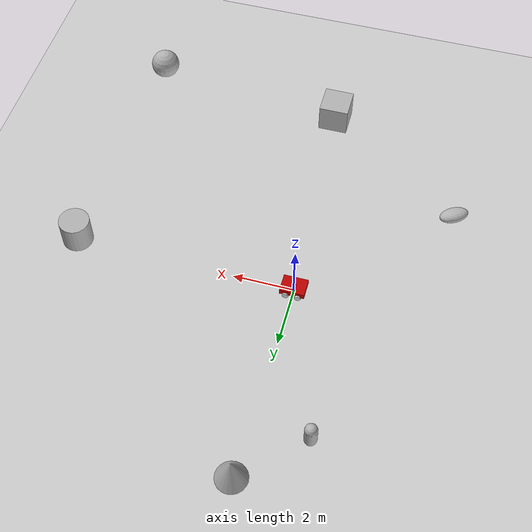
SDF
<sdf version='1.10'>
  <world name='empty'>
    <physics name='1ms' type='ignored'>
      <max_step_size>0.001</max_step_size>
      <real_time_factor>1</real_time_factor>
      <real_time_update_rate>1000</real_time_update_rate>
    </physics>
    <plugin name='gz::sim::systems::Physics' filename='gz-sim-physics-system'/>
    <plugin name='gz::sim::systems::UserCommands' filename='gz-sim-user-commands-system'/>
    <plugin name='gz::sim::systems::SceneBroadcaster' filename='gz-sim-scene-broadcaster-system'/>
    <plugin name='gz::sim::systems::Contact' filename='gz-sim-contact-system'/>
    <plugin name='gz::sim::systems::Sensors' filename='gz-sim-sensors-system'/>
    <gravity>0 0 -9.8000000000000007</gravity>
    <magnetic_field>5.5644999999999998e-06 2.2875799999999999e-05 -4.2388400000000002e-05</magnetic_field>
    <atmosphere type='adiabatic'/>
    <scene>
      <ambient>0.400000006 0.400000006 0.400000006 1</ambient>
      <background>0.699999988 0.699999988 0.699999988 1</background>
      <shadows>true</shadows>
    </scene>
    <model name='ground_plane'>
      <static>true</static>
      <link name='link'>
        <collision name='collision'>
          <geometry>
            <plane>
              <normal>0 0 1</normal>
              <size>100 100</size>
            </plane>
          </geometry>
          <surface>
            <friction>
              <ode/>
            </friction>
            <bounce/>
            <contact/>
          </surface>
        </collision>
        <visual name='visual'>
          <geometry>
            <plane>
              <normal>0 0 1</normal>
              <size>100 100</size>
            </plane>
          </geometry>
          <material>
            <ambient>0.800000012 0.800000012 0.800000012 1</ambient>
            <diffuse>0.800000012 0.800000012 0.800000012 1</diffuse>
            <specular>0.800000012 0.800000012 0.800000012 1</specular>
          </material>
        </visual>
        <pose>0 0 0 0 0 0</pose>
        <inertial>
          <pose>0 0 0 0 0 0</pose>
          <mass>1</mass>
          <inertia>
            <ixx>1</ixx>
            <ixy>0</ixy>
            <ixz>0</ixz>
            <iyy>1</iyy>
            <iyz>0</iyz>
            <izz>1</izz>
          </inertia>
        </inertial>
        <enable_wind>false</enable_wind>
      </link>
      <pose>0 0 0 0 0 0</pose>
      <self_collide>false</self_collide>
    </model>
    <model name='rover'>
      <link name='base_link'>
        <inertial>
          <pose>0 0 0.1042307692307692 0 0 0</pose>
          <mass>5.2000000000000002</mass>
          <inertia>
            <ixx>0.1691669230769231</ixx>
            <ixy>0</ixy>
            <ixz>0</ixz>
            <iyy>0.28583358974358991</iyy>
            <iyz>0</iyz>
            <izz>0.41699999999999998</izz>
          </inertia>
        </inertial>
        <collision name='base_link_collision'>
          <pose>0 0 0.10000000000000001 0 0 0</pose>
          <geometry>
            <box>
              <size>0.80000000000000004 0.59999999999999998 0.20000000000000001</size>
            </box>
          </geometry>
          <surface>
            <friction>
              <ode/>
            </friction>
            <bounce/>
            <contact/>
          </surface>
        </collision>
        <collision name='base_link_fixed_joint_lump__lidar_link_collision_1'>
          <pose>0 0 0.20999999999999999 0 0 0</pose>
          <geometry>
            <box>
              <size>0.10000000000000001 0.10000000000000001 0.02</size>
            </box>
          </geometry>
          <surface>
            <contact>
              <ode/>
            </contact>
            <friction>
              <ode/>
            </friction>
            <bounce/>
          </surface>
        </collision>
        <visual name='base_link_visual'>
          <pose>0 0 0.10000000000000001 0 0 0</pose>
          <geometry>
            <box>
              <size>0.80000000000000004 0.59999999999999998 0.20000000000000001</size>
            </box>
          </geometry>
          <material>
            <diffuse>0.75000006 0 0 1</diffuse>
            <ambient>0.75000006 0 0 1</ambient>
          </material>
        </visual>
        <visual name='base_link_fixed_joint_lump__lidar_link_visual_1'>
          <pose>0 0 0.20999999999999999 0 0 0</pose>
          <geometry>
            <cylinder>
              <length>0.02</length>
              <radius>0.050000000000000003</radius>
            </cylinder>
          </geometry>
          <material>
            <diffuse>0 0.75000006 0 1</diffuse>
            <ambient>0 0.75000006 0 1</ambient>
          </material>
        </visual>
        <sensor name='lidar' type='gpu_lidar'>
          <pose>0 0 0.20999999999999999 0 0 0</pose>
          <topic>scan</topic>
          <update_rate>5</update_rate>
          <enable_metrics>false</enable_metrics>
          <lidar>
            <scan>
              <horizontal>
                <samples>360</samples>
                <resolution>1</resolution>
                <min_angle>-1.5708</min_angle>
                <max_angle>1.5708</max_angle>
              </horizontal>
              <vertical>
                <samples>1</samples>
                <min_angle>0</min_angle>
                <max_angle>0</max_angle>
                <resolution>1</resolution>
              </vertical>
            </scan>
            <range>
              <min>0.12</min>
              <max>10</max>
              <resolution>0</resolution>
            </range>
            <noise>
              <type>none</type>
              <mean>0</mean>
              <stddev>0</stddev>
            </noise>
            <visibility_mask>4294967295</visibility_mask>
          </lidar>
        </sensor>
        <pose>0 0 0 0 0 0</pose>
        <enable_wind>false</enable_wind>
      </link>
      <joint name='base_back_left_wheel_joint' type='revolute'>
        <pose>0 0 0 0 0 0</pose>
        <parent>base_link</parent>
        <child>back_left_wheel_link</child>
        <axis>
          <xyz>0 1 0</xyz>
          <limit>
            <lower>-inf</lower>
            <upper>inf</upper>
            <effort>inf</effort>
            <velocity>inf</velocity>
            <stiffness>100000000</stiffness>
            <dissipation>1</dissipation>
          </limit>
          <dynamics>
            <spring_reference>0</spring_reference>
            <spring_stiffness>0</spring_stiffness>
            <damping>0</damping>
            <friction>0</friction>
          </dynamics>
        </axis>
      </joint>
      <link name='back_left_wheel_link'>
        <pose>-0.19999999999999998 0.32500000000000001 0 -3.0382561963537744e-33 4.5635994574735281e-16 -6.9326921646728353e-49</pose>
        <inertial>
          <pose>0 0 0 1.5707963267948959 0 0</pose>
          <mass>1</mass>
          <inertia>
            <ixx>0.0027083333333333339</ixx>
            <ixy>0</ixy>
            <ixz>0</ixz>
            <iyy>0.0027083333333333339</iyy>
            <iyz>0</iyz>
            <izz>0.005000000000000001</izz>
          </inertia>
        </inertial>
        <collision name='back_left_wheel_link_collision'>
          <pose>0 0 0 0 0 0</pose>
          <geometry>
            <sphere>
              <radius>0.10000000000000001</radius>
            </sphere>
          </geometry>
          <surface>
            <friction>
              <ode/>
            </friction>
            <bounce/>
            <contact/>
          </surface>
        </collision>
        <visual name='back_left_wheel_link_visual'>
          <pose>0 0 0 1.5707963267948959 0 0</pose>
          <geometry>
            <cylinder>
              <length>0.050000000000000003</length>
              <radius>0.10000000000000001</radius>
            </cylinder>
          </geometry>
          <material>
            <diffuse>0.875 0.875 0.875 1</diffuse>
            <ambient>0.875 0.875 0.875 1</ambient>
          </material>
        </visual>
        <enable_wind>false</enable_wind>
      </link>
      <joint name='base_back_right_wheel_joint' type='revolute'>
        <pose>0 0 0 0 0 0</pose>
        <parent>base_link</parent>
        <child>back_right_wheel_link</child>
        <axis>
          <xyz>0 1 0</xyz>
          <limit>
            <lower>-inf</lower>
            <upper>inf</upper>
            <effort>inf</effort>
            <velocity>inf</velocity>
            <stiffness>100000000</stiffness>
            <dissipation>1</dissipation>
          </limit>
          <dynamics>
            <spring_reference>0</spring_reference>
            <spring_stiffness>0</spring_stiffness>
            <damping>0</damping>
            <friction>0</friction>
          </dynamics>
        </axis>
      </joint>
      <link name='back_right_wheel_link'>
        <pose>-0.19999999999999998 -0.32500000000000001 0 1.010560251260518e-33 -1.5179076142201059e-16 -7.6696855000826185e-50</pose>
        <inertial>
          <pose>0 0 0 1.5707963267948959 0 0</pose>
          <mass>1</mass>
          <inertia>
            <ixx>0.0027083333333333339</ixx>
            <ixy>0</ixy>
            <ixz>0</ixz>
            <iyy>0.0027083333333333339</iyy>
            <iyz>0</iyz>
            <izz>0.005000000000000001</izz>
          </inertia>
        </inertial>
        <collision name='back_right_wheel_link_collision'>
          <pose>0 0 0 0 0 0</pose>
          <geometry>
            <sphere>
              <radius>0.10000000000000001</radius>
            </sphere>
          </geometry>
          <surface>
            <friction>
              <ode/>
            </friction>
            <bounce/>
            <contact/>
          </surface>
        </collision>
        <visual name='back_right_wheel_link_visual'>
          <pose>0 0 0 1.5707963267948959 0 0</pose>
          <geometry>
            <cylinder>
              <length>0.050000000000000003</length>
              <radius>0.10000000000000001</radius>
            </cylinder>
          </geometry>
          <material>
            <diffuse>0.875 0.875 0.875 1</diffuse>
            <ambient>0.875 0.875 0.875 1</ambient>
          </material>
        </visual>
        <enable_wind>false</enable_wind>
      </link>
      <joint name='base_front_left_wheel_joint' type='revolute'>
        <pose>0 0 0 0 0 0</pose>
        <parent>base_link</parent>
        <child>front_left_wheel_link</child>
        <axis>
          <xyz>0 1 0</xyz>
          <limit>
            <lower>-inf</lower>
            <upper>inf</upper>
            <effort>inf</effort>
            <velocity>inf</velocity>
            <stiffness>100000000</stiffness>
            <dissipation>1</dissipation>
          </limit>
          <dynamics>
            <spring_reference>0</spring_reference>
            <spring_stiffness>0</spring_stiffness>
            <damping>0</damping>
            <friction>0</friction>
          </dynamics>
        </axis>
      </joint>
      <link name='front_left_wheel_link'>
        <pose>0.20000000000000004 0.32500000000000001 0 1.4654403320447793e-33 -2.2011582539699258e-16 1.5407439555097885e-33</pose>
        <inertial>
          <pose>0 0 0 1.5707963267948959 0 0</pose>
          <mass>1</mass>
          <inertia>
            <ixx>0.0027083333333333339</ixx>
            <ixy>0</ixy>
            <ixz>0</ixz>
            <iyy>0.0027083333333333339</iyy>
            <iyz>0</iyz>
            <izz>0.005000000000000001</izz>
          </inertia>
        </inertial>
        <collision name='front_left_wheel_link_collision'>
          <pose>0 0 0 0 0 0</pose>
          <geometry>
            <sphere>
              <radius>0.10000000000000001</radius>
            </sphere>
          </geometry>
          <surface>
            <friction>
              <ode/>
            </friction>
            <bounce/>
            <contact/>
          </surface>
        </collision>
        <visual name='front_left_wheel_link_visual'>
          <pose>0 0 0 1.5707963267948959 0 0</pose>
          <geometry>
            <cylinder>
              <length>0.050000000000000003</length>
              <radius>0.10000000000000001</radius>
            </cylinder>
          </geometry>
          <material>
            <diffuse>0.875 0.875 0.875 1</diffuse>
            <ambient>0.875 0.875 0.875 1</ambient>
          </material>
        </visual>
        <enable_wind>false</enable_wind>
      </link>
      <joint name='base_front_right_wheel_joint' type='revolute'>
        <pose>0 0 0 0 0 0</pose>
        <parent>base_link</parent>
        <child>front_right_wheel_link</child>
        <axis>
          <xyz>0 1 0</xyz>
          <limit>
            <lower>-inf</lower>
            <upper>inf</upper>
            <effort>inf</effort>
            <velocity>inf</velocity>
            <stiffness>100000000</stiffness>
            <dissipation>1</dissipation>
          </limit>
          <dynamics>
            <spring_reference>0</spring_reference>
            <spring_stiffness>0</spring_stiffness>
            <damping>0</damping>
            <friction>0</friction>
          </dynamics>
        </axis>
      </joint>
      <link name='front_right_wheel_link'>
        <pose>0.20000000000000004 -0.32500000000000001 0 -1.9716503894009238e-34 2.9615088609696106e-17 -2.9195300494725096e-51</pose>
        <inertial>
          <pose>0 0 0 1.5707963267948959 0 0</pose>
          <mass>1</mass>
          <inertia>
            <ixx>0.0027083333333333339</ixx>
            <ixy>0</ixy>
            <ixz>0</ixz>
            <iyy>0.0027083333333333339</iyy>
            <iyz>0</iyz>
            <izz>0.005000000000000001</izz>
          </inertia>
        </inertial>
        <collision name='front_right_wheel_link_collision'>
          <pose>0 0 0 0 0 0</pose>
          <geometry>
            <sphere>
              <radius>0.10000000000000001</radius>
            </sphere>
          </geometry>
          <surface>
            <friction>
              <ode/>
            </friction>
            <bounce/>
            <contact/>
          </surface>
        </collision>
        <visual name='front_right_wheel_link_visual'>
          <pose>0 0 0 1.5707963267948959 0 0</pose>
          <geometry>
            <cylinder>
              <length>0.050000000000000003</length>
              <radius>0.10000000000000001</radius>
            </cylinder>
          </geometry>
          <material>
            <diffuse>0.875 0.875 0.875 1</diffuse>
            <ambient>0.875 0.875 0.875 1</ambient>
          </material>
        </visual>
        <enable_wind>false</enable_wind>
      </link>
      <plugin name='gz::sim::systems::DiffDrive' filename='gz-sim-diff-drive-system'>
        <left_joint>base_front_left_wheel_joint</left_joint>
        <left_joint>base_back_left_wheel_joint</left_joint>
        <right_joint>base_front_right_wheel_joint</right_joint>
        <right_joint>base_back_right_wheel_joint</right_joint>
        <wheel_seperation>0.6</wheel_seperation>
        <wheel_radius>0.1</wheel_radius>
        <topic>cmd_vel</topic>
        <odom_publish_frequency>50</odom_publish_frequency>
        <odom_topic>odom</odom_topic>
        <frame_id>odom</frame_id>
        <child_frame_id>base_link</child_frame_id>
      </plugin>
      <plugin name='gz::sim::systems::JointStatePublisher' filename='gz-sim-joint-state-publisher-system'/>
      <plugin name='gz::sim::systems::PosePublisher' filename='gz-sim-pose-publisher-system'>
        <publish_tf>true</publish_tf>
        <use_pose_vector_msg>true</use_pose_vector_msg>
        <odom_frame>odom</odom_frame>
        <base_frame>base_link</base_frame>
        <update_frequency>50</update_frequency>
      </plugin>
      <frame name='lidar_joint' attached_to='base_link'>
        <pose>0 0 0.20999999999999999 0 0 0</pose>
      </frame>
      <frame name='lidar_link' attached_to='lidar_joint'>
        <pose>0 0 0 0 0 0</pose>
      </frame>
      <pose>-7.0222077317828043e-18 7.6462356668089176e-18 0.099999882957391761 -3.1670114774758941e-16 1.9607430592807374e-16 -1.3315174675894144e-17</pose>
      <static>false</static>
      <self_collide>false</self_collide>
    </model>
    <model name='box'>
      <pose>0.36337307533880736 -7.4273852801787381 0.49999999990199806 6.2287739151293738e-22 9.3279666454713669e-22 -3.6315533669320137e-22</pose>
      <link name='box_link'>
        <inertial>
          <inertia>
            <ixx>0.16666</ixx>
            <ixy>0</ixy>
            <ixz>0</ixz>
            <iyy>0.16666</iyy>
            <iyz>0</iyz>
            <izz>0.16666</izz>
          </inertia>
          <mass>1</mass>
          <pose>0 0 0 0 0 0</pose>
        </inertial>
        <collision name='box_collision'>
          <geometry>
            <box>
              <size>1 1 1</size>
            </box>
          </geometry>
          <surface>
            <friction>
              <ode/>
            </friction>
            <bounce/>
            <contact/>
          </surface>
        </collision>
        <visual name='box_visual'>
          <geometry>
            <box>
              <size>1 1 1</size>
            </box>
          </geometry>
          <material>
            <ambient>0.300000012 0.300000012 0.300000012 1</ambient>
            <diffuse>0.699999988 0.699999988 0.699999988 1</diffuse>
            <specular>1 1 1 1</specular>
          </material>
        </visual>
        <pose>0 0 0 0 0 0</pose>
        <enable_wind>false</enable_wind>
      </link>
      <static>false</static>
      <self_collide>false</self_collide>
    </model>
    <model name='cone'>
      <pose>0.14012156980518803 6.48513971657552 0.49999999993296756 5.2539945573181856e-17 -7.7132841035436812e-10 -5.6868189272679964e-23</pose>
      <link name='cone_link'>
        <inertial>
          <inertia>
            <ixx>0.074999999999999997</ixx>
            <ixy>0</ixy>
            <ixz>0</ixz>
            <iyy>0.074999999999999997</iyy>
            <iyz>0</iyz>
            <izz>0.074999999999999997</izz>
          </inertia>
          <mass>1</mass>
          <pose>0 0 0 0 0 0</pose>
        </inertial>
        <collision name='cone_collision'>
          <geometry>
            <cone>
              <radius>0.5</radius>
              <length>1</length>
            </cone>
          </geometry>
          <surface>
            <friction>
              <ode/>
            </friction>
            <bounce/>
            <contact/>
          </surface>
        </collision>
        <visual name='cone_visual'>
          <geometry>
            <cone>
              <radius>0.5</radius>
              <length>1</length>
            </cone>
          </geometry>
          <material>
            <ambient>0.300000012 0.300000012 0.300000012 1</ambient>
            <diffuse>0.699999988 0.699999988 0.699999988 1</diffuse>
            <specular>1 1 1 1</specular>
          </material>
        </visual>
        <pose>0 0 0 0 0 0</pose>
        <enable_wind>false</enable_wind>
      </link>
      <static>false</static>
      <self_collide>false</self_collide>
    </model>
    <model name='cylinder'>
      <pose>7.3439822785190163 -0.069486855069821121 0.49999942638036005 -2.930207286168773e-19 3.2713975018436732e-19 1.4123579863280777e-20</pose>
      <link name='cylinder_link'>
        <inertial>
          <inertia>
            <ixx>0.14580000000000001</ixx>
            <ixy>0</ixy>
            <ixz>0</ixz>
            <iyy>0.14580000000000001</iyy>
            <iyz>0</iyz>
            <izz>0.125</izz>
          </inertia>
          <mass>1</mass>
          <pose>0 0 0 0 0 0</pose>
        </inertial>
        <collision name='cylinder_collision'>
          <geometry>
            <cylinder>
              <radius>0.5</radius>
              <length>1</length>
            </cylinder>
          </geometry>
          <surface>
            <friction>
              <ode/>
            </friction>
            <bounce/>
            <contact/>
          </surface>
        </collision>
        <visual name='cylinder_visual'>
          <geometry>
            <cylinder>
              <radius>0.5</radius>
              <length>1</length>
            </cylinder>
          </geometry>
          <material>
            <ambient>0.300000012 0.300000012 0.300000012 1</ambient>
            <diffuse>0.699999988 0.699999988 0.699999988 1</diffuse>
            <specular>1 1 1 1</specular>
          </material>
        </visual>
        <pose>0 0 0 0 0 0</pose>
        <enable_wind>false</enable_wind>
      </link>
      <static>false</static>
      <self_collide>false</self_collide>
    </model>
    <model name='capsule'>
      <pose>-1.735929104348628 4.865311501198752 0.499999999902001 0 0 0</pose>
      <link name='capsule_link'>
        <inertial>
          <inertia>
            <ixx>0.074153999999999998</ixx>
            <ixy>0</ixy>
            <ixz>0</ixz>
            <iyy>0.074153999999999998</iyy>
            <iyz>0</iyz>
            <izz>0.018769000000000001</izz>
          </inertia>
          <mass>1</mass>
          <pose>0 0 0 0 0 0</pose>
        </inertial>
        <collision name='capsule_collision'>
          <geometry>
            <capsule>
              <radius>0.20000000000000001</radius>
              <length>0.59999999999999998</length>
            </capsule>
          </geometry>
          <surface>
            <friction>
              <ode/>
            </friction>
            <bounce/>
            <contact/>
          </surface>
        </collision>
        <visual name='capsule_visual'>
          <geometry>
            <capsule>
              <radius>0.20000000000000001</radius>
              <length>0.59999999999999998</length>
            </capsule>
          </geometry>
          <material>
            <ambient>0.300000012 0.300000012 0.300000012 1</ambient>
            <diffuse>0.699999988 0.699999988 0.699999988 1</diffuse>
            <specular>1 1 1 1</specular>
          </material>
        </visual>
        <pose>0 0 0 0 0 0</pose>
        <enable_wind>false</enable_wind>
      </link>
      <static>false</static>
      <self_collide>false</self_collide>
    </model>
    <model name='ellipsoid'>
      <pose>-4.4333154532069354 -4.1630245539465536 0.18666848213322912 1.5707963082662282 -1.3774917755689928 -1.0062036176363216</pose>
      <link name='ellipsoid_link'>
        <inertial>
          <inertia>
            <ixx>0.068000000000000005</ixx>
            <ixy>0</ixy>
            <ixz>0</ixz>
            <iyy>0.058000000000000003</iyy>
            <iyz>0</iyz>
            <izz>0.025999999999999999</izz>
          </inertia>
          <mass>1</mass>
          <pose>0 0 0 0 0 0</pose>
        </inertial>
        <collision name='ellipsoid_collision'>
          <geometry>
            <ellipsoid>
              <radii>0.20000000000000001 0.29999999999999999 0.5</radii>
            </ellipsoid>
          </geometry>
          <surface>
            <friction>
              <ode/>
            </friction>
            <bounce/>
            <contact/>
          </surface>
        </collision>
        <visual name='ellipsoid_visual'>
          <geometry>
            <ellipsoid>
              <radii>0.20000000000000001 0.29999999999999999 0.5</radii>
            </ellipsoid>
          </geometry>
          <material>
            <ambient>0.300000012 0.300000012 0.300000012 1</ambient>
            <diffuse>0.699999988 0.699999988 0.699999988 1</diffuse>
            <specular>1 1 1 1</specular>
          </material>
        </visual>
        <pose>0 0 0 0 0 0</pose>
        <enable_wind>false</enable_wind>
      </link>
      <static>false</static>
      <self_collide>false</self_collide>
    </model>
    <model name='sphere'>
      <pose>6.9966705006438019 -8.0822356406468749 0.499999999902001 0 0 0</pose>
      <link name='sphere_link'>
        <inertial>
          <inertia>
            <ixx>0.10000000000000001</ixx>
            <ixy>0</ixy>
            <ixz>0</ixz>
            <iyy>0.10000000000000001</iyy>
            <iyz>0</iyz>
            <izz>0.10000000000000001</izz>
          </inertia>
          <mass>1</mass>
          <pose>0 0 0 0 0 0</pose>
        </inertial>
        <collision name='sphere_collision'>
          <geometry>
            <sphere>
              <radius>0.5</radius>
            </sphere>
          </geometry>
          <surface>
            <friction>
              <ode/>
            </friction>
            <bounce/>
            <contact/>
          </surface>
        </collision>
        <visual name='sphere_visual'>
          <geometry>
            <sphere>
              <radius>0.5</radius>
            </sphere>
          </geometry>
          <material>
            <ambient>0.300000012 0.300000012 0.300000012 1</ambient>
            <diffuse>0.699999988 0.699999988 0.699999988 1</diffuse>
            <specular>1 1 1 1</specular>
          </material>
        </visual>
        <pose>0 0 0 0 0 0</pose>
        <enable_wind>false</enable_wind>
      </link>
      <static>false</static>
      <self_collide>false</self_collide>
    </model>
    <light name='sun' type='directional'>
      <pose>0 0 10 0 0 0</pose>
      <cast_shadows>true</cast_shadows>
      <intensity>1</intensity>
      <direction>-0.5 0.10000000000000001 -0.90000000000000002</direction>
      <diffuse>0.800000012 0.800000012 0.800000012 1</diffuse>
      <specular>0.200000003 0.200000003 0.200000003 1</specular>
      <attenuation>
        <range>1000</range>
        <linear>0.01</linear>
        <constant>0.90000000000000002</constant>
        <quadratic>0.001</quadratic>
      </attenuation>
      <spot>
        <inner_angle>0</inner_angle>
        <outer_angle>0</outer_angle>
        <falloff>0</falloff>
      </spot>
    </light>
  </world>
</sdf>
